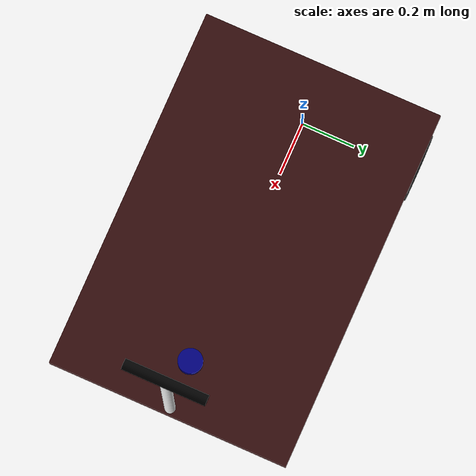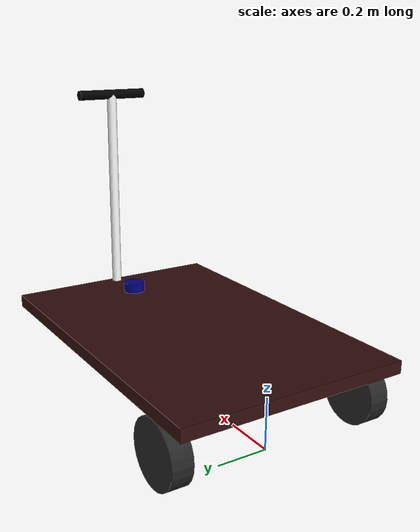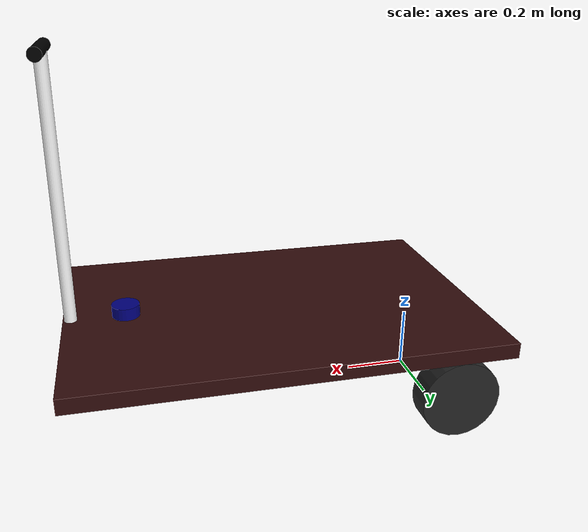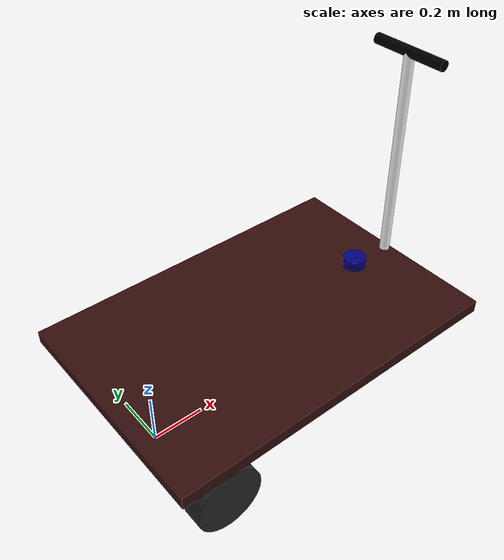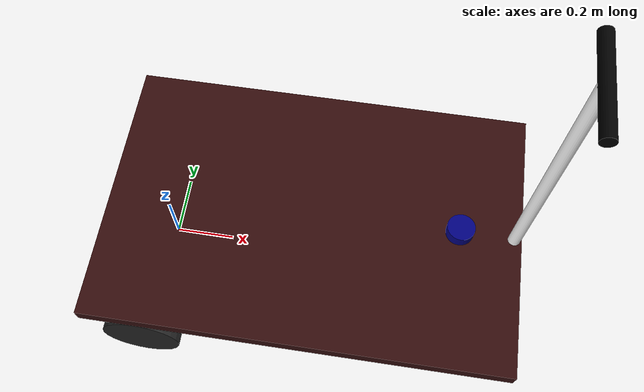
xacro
<?xml version="1.0"?>
<robot name="gebot" xmlns:xacro="http://www.ros.org/wiki/xacro">

    <xacro:property name="base_width" value="0.9"/>
    <xacro:property name="base_length" value="1.35"/>
    <xacro:property name="base_height" value="0.05"/>

    <xacro:property name="wheel_radius" value="0.125"/>
    <xacro:property name="wheel_width" value="0.08"/>
    <xacro:property name="wheel_ygap" value="-0.04"/>
    <xacro:property name="wheel_zoff" value="0.025"/>
    <xacro:property name="wheel_xoff" value="0.5"/>

    <!-- Defination of some commonly used intertial properties  -->
    <xacro:macro name="box_inertia" params="m w h d">
        <inertial>
            <origin xyz="0 0 0" rpy="${pi/2} 0 ${pi/2}"/>
            <mass value="${m}"/>
            <inertia ixx="${(m/12) * (h*h + d*d)}" ixy="0.0" ixz="0.0" iyy="${(m/12) * (w*w + d*d)}" iyz="0.0" izz="${(m/12) * (w*w + h*h)}"/>
        </inertial>
    </xacro:macro>

    <xacro:macro name="cylinder_inertia" params="m r h">
        <inertial>
            <origin xyz="0 0 0" rpy="${pi/2} 0 0" />
            <mass value="${m}"/>
            <inertia ixx="${(m/12) * (3*r*r + h*h)}" ixy = "0" ixz = "0" iyy="${(m/12) * (3*r*r + h*h)}" iyz = "0" izz="${(m/2) * (r*r)}"/>
        </inertial>
    </xacro:macro>

    <!-- Material -->
    <material name="black">
        <color rgba="0.0 0.0 0.0 1.0"/>
    </material>
    <material name="white">
        <color rgba="1.0 1.0 1.0 1.0"/>
    </material>
    <material name="wheel">
        <color rgba="0.15 0.15 0.15 1.0"/>
    </material>
    <material name="myblue">
        <color rgba="0.0 0.0 0.5 1.0"/>
    </material>
    <material name="base">
        <color rgba="0.2 0.05 0.05 1.0"/>
    </material>
    <material name="lidar">
        <color rgba="0.8 0.0 0.0 1.0"/>
    </material>

    <!-- Robot Base -->
    <link name="base_link"/>

    <!-- Base_footprint -->

    <!-- Chassis -->
    <link name="base_chassis">
        <collision>
            <origin xyz="0.0 0.0 0.0" rpy="0.0 0.0 0.0"/>
            <geometry>
                <box size="${base_length} ${base_width} ${base_height}"/>
            </geometry>
        </collision>
        <visual>
            <origin xyz="0.0 0.0 0.0" rpy="0.0 0.0 0.0"/>
            <geometry>
                <box size="${base_length} ${base_width} ${base_height}"/>
            </geometry>
            <material name="base"/>
        </visual>

        <xacro:box_inertia m="1" w="${base_width}" d="${base_length}" h="${base_height}"/>
    </link>

    <joint name="base_link_joint" type="fixed">
        <origin xyz="0.5 0.0 0.275" rpy="0.0 0.0 0.0"/>
        <parent link="base_link"/>
        <child link="base_chassis"/>
    </joint>

    <!-- Wheels -->
    <xacro:macro name="wheel" params="prefix x_reflect y_reflect">
        <link name="${prefix}">
            <collision>
                <!--origin xyz="0 0 0" rpy="${pi/2} 0 0"/-->
                <geometry>
                    <cylinder radius="${wheel_radius}" length="${wheel_width}"/>
                </geometry>
            </collision>
            <visual>
                <!--origin xyz="0 0 0" rpy="${pi/2} 0 0"/-->
                <geometry>
                    <cylinder radius="${wheel_radius}" length="${wheel_width}"/>
                </geometry>
                <material name="wheel"/>
            </visual>

            <xacro:cylinder_inertia m="1" r="${wheel_radius}" h="${wheel_width}"/>
        </link>

        <joint name="${prefix}_joint" type="continuous">
            <origin xyz="${x_reflect*wheel_xoff} ${y_reflect*(base_width/2+wheel_ygap)} ${-(wheel_radius+wheel_zoff)}" rpy="${-pi/2} 0 0"/>
            <parent link="base_chassis"/>
            <child link="${prefix}"/>
            <axis xyz="0 0 1"/>
            <dynamics damping="0.2"/>
        </joint>
    </xacro:macro>

    <xacro:wheel prefix="right_wheel" x_reflect="-1" y_reflect="-1" />
    <xacro:wheel prefix="left_wheel" x_reflect="-1" y_reflect="1" />

    <!-- Front Wheel and Joint-->
    <link name="front_wheel">
        <visual>
            <!--origin xyz="0 0 0" rpy="${pi/2} 0 0"/-->
            <geometry>
                <cylinder radius="${wheel_radius}" length="${(wheel_width+0.02)}"/>
            </geometry>
            <material name="wheel"/>
        </visual>
        <collision>
            <!--origin xyz="0 0 0" rpy="${pi/2} 0 0"/-->
            <geometry>
                <cylinder radius="${wheel_radius}" length="${(wheel_width+0.02)}"/>
            </geometry>
        </collision>
        <xacro:cylinder_inertia m="1" r="${wheel_radius}" h="${(wheel_width+0.02)}"/>
    </link>

    <!-- Steering Links and Joints-->
    <link name="steering_link">
        <visual>
            <origin xyz="0.0 0.0 0.0" rpy="0.0 0.0 0.0"/>
            <geometry>
                <cylinder radius="0.02"  length="0.93"/>
            </geometry>
            <material name="white"/>
        </visual>
        <collision>
            <origin xyz="0.0 0.0 0.0" rpy="0.0 0.0 0.0"/>
            <geometry>
                <cylinder radius="0.02"  length="0.93"/>
            </geometry>
        </collision>
        <xacro:cylinder_inertia m="1" r="0.02" h="0.93"/>
    </link>

    <joint name="front_steering_joint" type="fixed">
        <parent link="base_chassis"/>
        <child link="steering_link"/>
        <origin xyz="0.65 0.0 0.4"/>
    </joint>

    <link name="steering_wheel">
        <visual>
            <origin xyz="0.0 0.0 0.0" rpy="${pi/2} 0.0 0.0"/>
            <geometry>
                <cylinder radius="0.02" length="0.3"/>
            </geometry>
            <material name="black"/>
        </visual>
        <collision>
            <origin xyz="0.0 0.0 0.0" rpy="${pi/2} 0.0 0.0"/>
            <geometry>
                <cylinder radius="0.02" length="0.3"/>
            </geometry>
        </collision>
        <xacro:cylinder_inertia m="1" r="0.02" h="0.3"/>
    </link>

    <joint name="steering_wheel_connector" type="fixed">
        <parent link="steering_link"/>
        <child link="steering_wheel"/>
        <origin xyz="0.0 0.0 0.465"/>
    </joint>

    <link name="bearing">
        <visual>
            <origin xyz="0.0 0.0 0.0" rpy="0.0 0.0 0.0"/>
            <geometry>
                <cylinder radius="0.045" length="0.04"/>
            </geometry>
            <material name="myblue"/>
        </visual>
        <collision>
            <origin xyz="0.0 0.0 0.0" rpy="0.0 0.0 0.0"/>
            <geometry>
                <cylinder radius="0.045" length="0.04"/>
            </geometry>
        </collision>
        <xacro:cylinder_inertia m="1" r="0.0045" h="0.04"/>
    </link>

    <joint name="bearing_joint"  type="revolute">
        <axis xyz="0 0 1"/>
        <limit effort="1000.0" lower="-1.4" upper="1.4" velocity="0.5"/>
        <parent link="base_chassis"/>
        <child link="bearing"/>
        <origin xyz="0.475 0.0 0.045"/>
    </joint>

    <link name="bearing_gear">
        <visual>
            <origin xyz="0.0 0.0 0.0" rpy="0.0 0.0 0.0"/>
            <geometry>
                <cylinder radius="0.02" length="0.195"/>
            </geometry>
            <material name="myblue"/>
        </visual>
        <collision>
            <origin xyz="0.0 0.0 0.0" rpy="0.0 0.0 0.0"/>
            <geometry>
                <cylinder radius="0.02" length="0.195"/>
            </geometry>
        </collision>
        <xacro:cylinder_inertia m="1" r="0.02" h="0.195"/>
    </link>

    <joint name="drive_unit" type="fixed">
        <parent link="bearing"/>
        <child link="bearing_gear"/>
        <origin xyz="0.0 0.0 -0.0975"/>
    </joint>

    <joint name="front_wheel_joint" type="continuous">
        <axis xyz="0 0 1" />
        <parent link="bearing_gear"/>
        <child link="front_wheel"/>
        <origin xyz="0.0 0.0 -0.0975" rpy="${-pi/2} 0.0 0.0"/>

        <dynamics damping="0.2" />
    </joint>

</robot>
